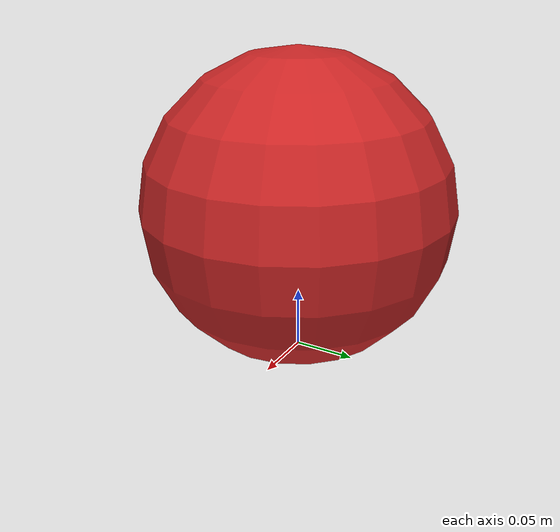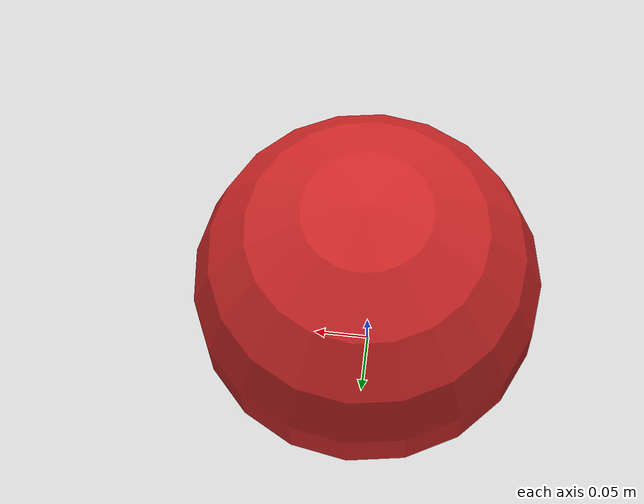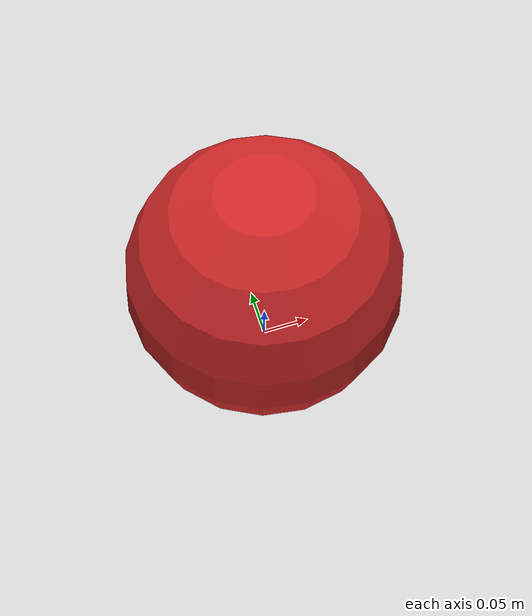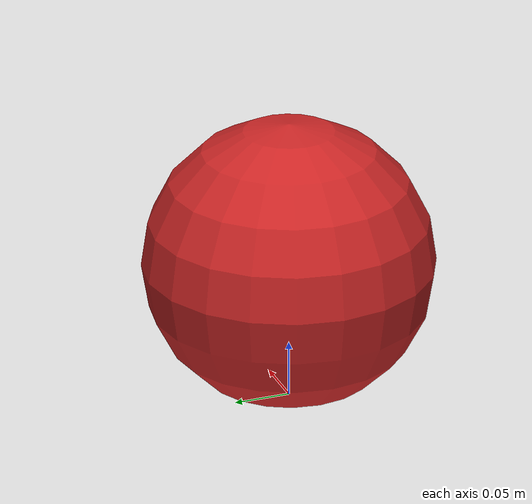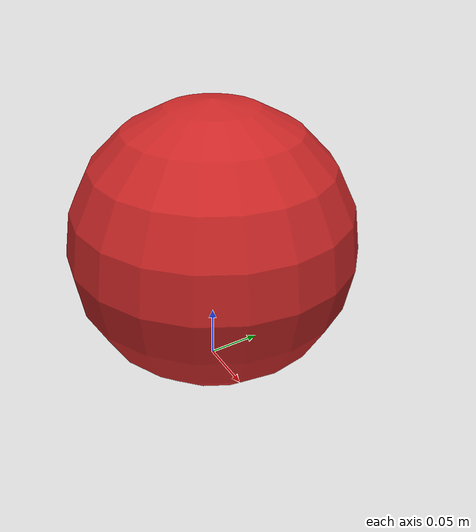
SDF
<?xml version="1.0" ?>
<sdf version="1.5">
  <model name="red_ball_10in">
    <pose>0 0 0.127 0 0 0</pose>
    <link name="link">
      <inertial>
        <mass>0.213</mass>
        <inertia>
          <ixx>0.003226667</ixx>
          <ixy>0</ixy>
          <ixz>0</ixz>
          <iyy>0.003226667</iyy>
          <iyz>0</iyz>
          <izz>0.003226667</izz>
        </inertia>
      </inertial>
      <visual name="visual">
        <geometry>
          <sphere>
            <radius>0.127</radius>
          </sphere>
        </geometry>
        <material>
          <script>
            <uri>file://media/materials/scripts/gazebo.material</uri>
            <name>Gazebo/Red</name>
          </script>
          <emissive>1 0 0 1</emissive>
        </material>
      </visual>
      <collision name="collision">
        <geometry>
          <sphere>
            <radius>0.127</radius>
          </sphere>
        </geometry>
        <surface>
          <bounce>
            <restitution_coefficient>0.15937</restitution_coefficient>
            <threshold>0</threshold>
          </bounce>
          <contact>
            <ode>
              <max_vel>100</max_vel>
              <min_depth>0.001</min_depth>
            </ode>
          </contact>
        </surface>
      </collision>
    </link>
  </model>
</sdf>
